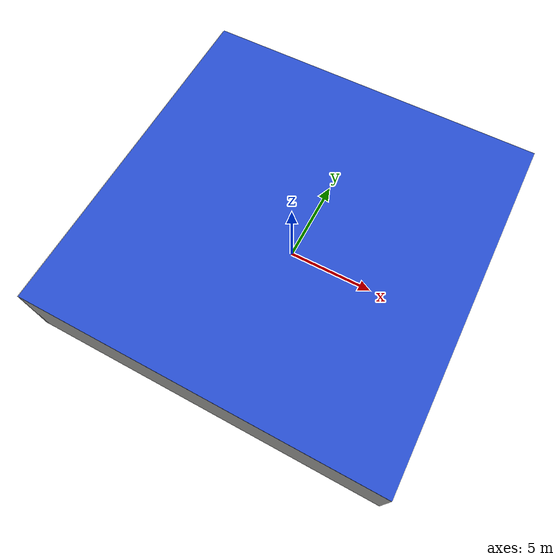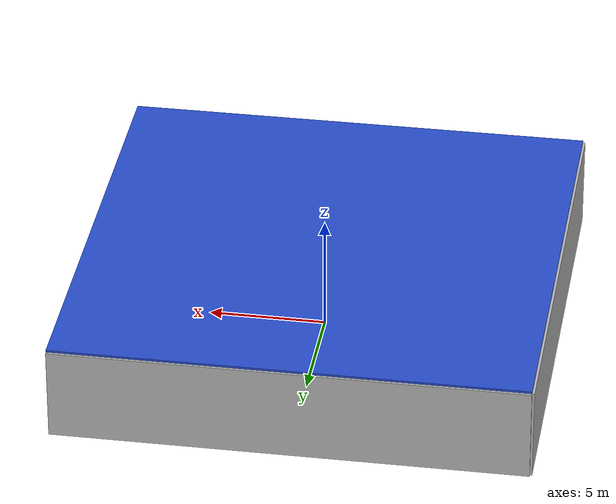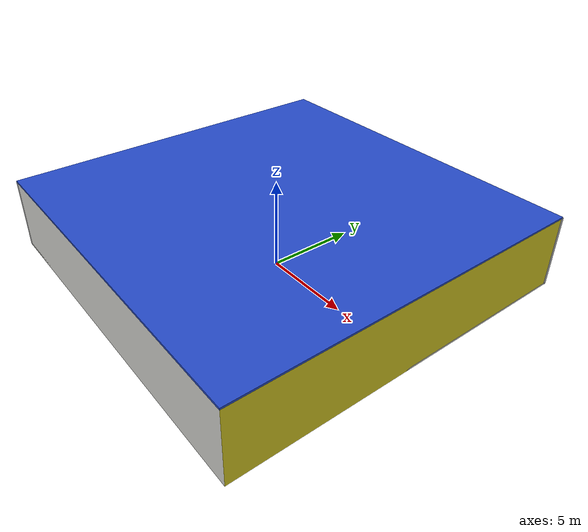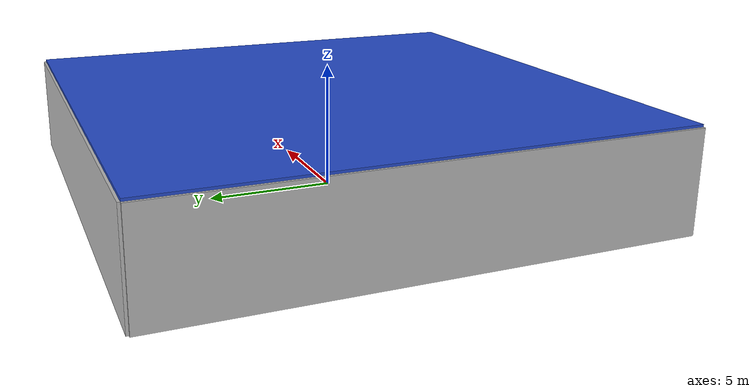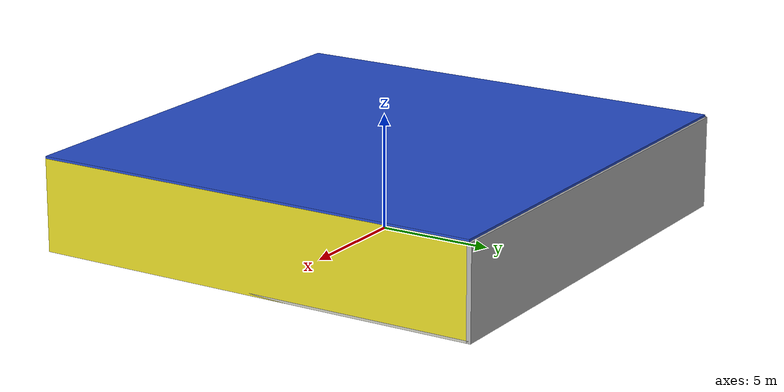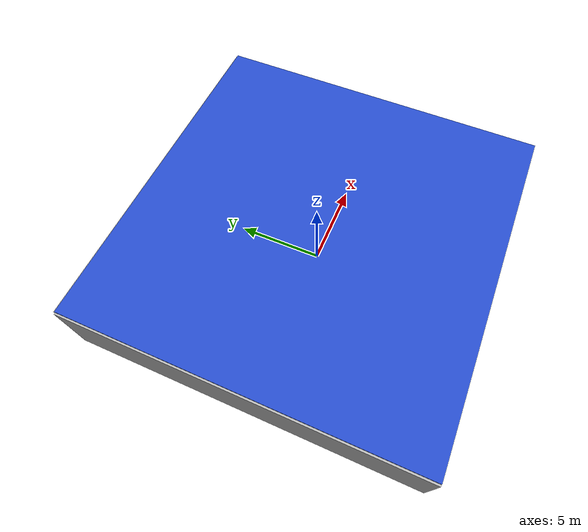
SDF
<sdf version="1.4">
 <world name="default">
  <physics type="ode">
   <max_step_size>0.001</max_step_size>
   <real_time_factor>1</real_time_factor>
   <real_time_update_rate>1000</real_time_update_rate>
   <gravity>0 0 -9.8</gravity>
  </physics>
  <scene><ambient>0.4 0.4 0.4 1</ambient><background>0.7 0.7 0.7 1</background><shadows>1</shadows></scene>
  <model name="Surrounding">
   <static>1</static>
   <link name="Ceiling">
    <collision name="Ceiling_Collision"><geometry><box><size>20 20 0.1</size></box></geometry></collision>
    <visual name="Ceiling_Visual">
     <geometry><box><size>20 20 0.1</size></box></geometry>
     <material>
      <script><uri>file://media/materials/scripts/gazebo.material</uri><name>Gazebo/BlueGlow</name></script>
     </material>
    </visual>
    <pose>0 0 4.05 0 0 0</pose>
   </link>
   <link name="Wall_South">
    <collision name="Wall_South_Collision">
     <geometry><box><size>20 0 4</size></box></geometry>
     <pose>0 0 2 0 -0 0</pose>
    </collision>
    <visual name="Wall_South_Visual">
     <pose>0 0 2 0 -0 0</pose>
     <geometry><box><size>20 0 4</size></box></geometry>
     <material>
      <script><uri>file://media/materials/scripts/gazebo.material</uri><name>Gazebo/CeilingTiled</name></script>
     </material>
    </visual>
    <velocity_decay><linear>0</linear><angular>0</angular></velocity_decay>
    <pose>0 -10 0 0 -0 0</pose>
   </link>
   <link name="Wall_East">
    <collision name="Wall_21_Collision">
     <geometry><box><size>20 0 4</size></box></geometry>
     <pose>0 0 2 0 -0 0</pose>
    </collision>
    <visual name="Wall_21_Visual">
     <pose>0 0 2 0 -0 0</pose>
     <geometry><box><size>20 0 4</size></box></geometry>
     <material>
      <script><uri>file://media/materials/scripts/gazebo.material</uri><name>Gazebo/YellowGlow</name></script>
     </material>
    </visual>
    <velocity_decay><linear>0</linear><angular>0</angular></velocity_decay>
    <pose>10 0 0 0 -0 1.5708</pose>
   </link>
   <link name="Wall_North">
    <collision name="Wall_22_Collision">
     <geometry><box><size>20 0.2 4</size></box></geometry>
     <pose>0 0 2 0 -0 0</pose>
    </collision>
    <visual name="Wall_22_Visual">
     <pose>0 0 2 0 -0 0</pose>
     <geometry><box><size>20 0.2 4</size></box></geometry>
     <material>
      <script><uri>file://media/materials/scripts/gazebo.material</uri><name>Gazebo/JointAnchor</name></script>
     </material>
    </visual>
    <velocity_decay><linear>0</linear><angular>0</angular></velocity_decay>
    <pose>0 10 0 0 -0 0</pose>
   </link>
   <link name="Wall_West">
    <collision name="Wall_23_Collision">
     <geometry><box><size>20 0.2 4</size></box></geometry>
     <pose>0 0 2 0 -0 0</pose>
    </collision>
    <visual name="Wall_23_Visual">
     <pose>0 0 2 0 -0 0</pose>
     <geometry><box><size>20 0.2 4</size></box></geometry>
     <material>
      <script><uri>file://media/materials/scripts/gazebo.material</uri><name>Gazebo/LightOff</name></script>
     </material>
    </visual>
    <velocity_decay><linear>0</linear><angular>0</angular></velocity_decay>
    <pose>-10 0 0 0 0 -1.5708</pose>
   </link>
   <link name="Ground_link">
    <collision name="collision">
     <pose>0 0 .05 0 -0 0</pose>
     <geometry><box><size>20 20 0.1</size></box></geometry>
    </collision>
    <visual name="visual">
     <pose>0 0 .05 0 -0 0</pose>
     <geometry><box><size>20 20 0.1</size></box></geometry>
     <material>
      <script><uri>file://media/materials/scripts/gazebo.material</uri><name>Gazebo/PaintedWall</name></script>
     </material>
    </visual>
   </link>
   <static>1</static>
  </model>
  <spherical_coordinates>
   <surface_model>EARTH_WGS84</surface_model>
   <latitude_deg>0</latitude_deg>
   <longitude_deg>0</longitude_deg>
   <elevation>0</elevation>
   <heading_deg>0</heading_deg>
  </spherical_coordinates>
  <light name="lightball_0" type="diffuse">
   <diffuse>0.8 0.8 0.8 1</diffuse>
   <specular>0.2 0.2 0.2 1</specular>
   <attenuation>
    <range>100</range>
    <constant>0.7</constant>
    <linear>0.01</linear>
    <quadratic>0.001</quadratic>
   </attenuation>
   <direction>-0.5 0.1 -0.9</direction>
   <pose>-7.15594586685 5.40247141053 2.02155128995 0 0 0</pose>
  </light>
  <light name="lightball_1" type="diffuse">
   <diffuse>0.8 0.8 0.8 1</diffuse>
   <specular>0.2 0.2 0.2 1</specular>
   <attenuation>
    <range>100</range>
    <constant>0.7</constant>
    <linear>0.01</linear>
    <quadratic>0.001</quadratic>
   </attenuation>
   <direction>-0.5 0.1 -0.9</direction>
   <pose>-8.53074468177 3.76611683301 1.34309307447 0 0 0</pose>
  </light>
  <light name="lightball_2" type="diffuse">
   <diffuse>0.8 0.8 0.8 1</diffuse>
   <specular>0.2 0.2 0.2 1</specular>
   <attenuation>
    <range>100</range>
    <constant>0.7</constant>
    <linear>0.01</linear>
    <quadratic>0.001</quadratic>
   </attenuation>
   <direction>-0.5 0.1 -0.9</direction>
   <pose>-6.0662179171 8.8625415382 2.15899731203 0 0 0</pose>
  </light>
  <include>
   <uri>model://construction_cone</uri>
   <pose>-4.20914552128 7.87352533076 0 0 0 2.39692313554</pose>
  </include>
  <include>
   <uri>model://textured_shapes</uri>
   <pose>-0.88759549539 -3.98083277337 0 0 0 1.98608483548</pose>
  </include>
  <include><uri>model://cabinet</uri><pose>-1.91756424933 0.700485012686 0 0 0 0.358120206335</pose></include>
  <include><uri>model://cabinet</uri><pose>4.89553152659 4.18206559726 0 0 0 0.662780155287</pose></include>
  <include>
   <uri>model://textured_shapes</uri>
   <pose>7.38095121095 -7.30265015973 0 0 0 0.330690460911</pose>
  </include>
  <include>
   <uri>model://robocup_3Dsim_goal</uri>
   <pose>6.83192825038 1.83624450206 0 0 0 1.42063019698</pose>
  </include>
 </world>
</sdf>

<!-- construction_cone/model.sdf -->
<sdf version="1.5">
  <model name="Construction Cone">
    <link name="link">
      <collision name="collision">
        <geometry>
          <mesh>
            <scale>10 10 10</scale>
            <uri>file://isr-testbed/construction_cone/meshes/construction_cone.dae</uri>
          </mesh>
        </geometry>
      </collision>
      <visual name="visual">
        <geometry>
          <mesh>
            <scale>10 10 10</scale>
            <uri>file://isr-testbed/construction_cone/meshes/construction_cone.dae</uri>
          </mesh>
        </geometry>
      </visual>
    </link>
  </model>
</sdf>

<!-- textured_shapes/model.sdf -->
<sdf version="1.6">
  <model name="textured_shapes">
    <pose>0 0 0.5 0 0 0</pose>
    <link name="box">
      <pose>0 -1.5 0 0 0 0</pose>
      <collision name="collision">
        <geometry>
          <box>
            <size>1 1 1</size>
          </box>
        </geometry>
      </collision>
      <visual name="visual">
        <geometry>
          <box>
            <size>1 1 1</size>
          </box>
        </geometry>
        <material>
          <script>
            <uri>model://../model_source/models/textured_shapes/materials/scripts</uri>
            <uri>model://../model_source/models/textured_shapes/materials/textures</uri>
            <name>TexturedShape/Squares</name>
          </script>
        </material>
      </visual>
    </link>
    <link name="sphere">
      <collision name="collision">
        <geometry>
          <sphere>
            <radius>0.5</radius>
          </sphere>
        </geometry>
      </collision>
      <visual name="visual">
        <geometry>
          <sphere>
            <radius>0.5</radius>
          </sphere>
        </geometry>
        <material>
          <script>
            <uri>model://../model_source/models/textured_shapes/materials/scripts</uri>
            <uri>model://../model_source/models/textured_shapes/materials/textures</uri>
            <name>TexturedShape/Squares</name>
          </script>
        </material>
      </visual>
    </link>
    <link name="cylinder">
      <pose>0 1.5 0 0 0 0</pose>
      <collision name="collision">
        <geometry>
          <cylinder>
            <radius>0.5</radius>
            <length>1</length>
          </cylinder>
        </geometry>
      </collision>
      <visual name="visual">
        <geometry>
          <cylinder>
            <radius>0.5</radius>
            <length>1</length>
          </cylinder>
        </geometry>
        <material>
          <script>
            <uri>model://../model_source/models/textured_shapes/materials/scripts</uri>
            <uri>model://../model_source/models/textured_shapes/materials/textures</uri>
            <name>TexturedShape/Squares</name>
          </script>
        </material>
      </visual>
    </link>
  </model>
</sdf>

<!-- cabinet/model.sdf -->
<sdf version="1.5">
  <model name="cabinet">
    <static>true</static>
    <link name="cabinet_bottom_plate">
      <inertial>
        <pose>0 0 -1 0 0 0</pose>
        <inertia>
          <ixx>2.050000</ixx>
          <ixy>0</ixy>
          <ixz>0</ixz>
          <iyy>2.050000</iyy>
          <iyz>0</iyz>
          <izz>2.050000</izz>
        </inertia>
        <mass>25.000000</mass>
      </inertial>
      <collision name="cabinet_bottom_plate_geom">
        <pose>0 0 0.010000 0 0 0</pose>
        <geometry>
          <box>
            <size>0.450000 0.450000 0.020000</size>
          </box>
        </geometry>
      </collision>
      <visual name="cabinet_bottom_plate_geom_visual">
        <pose>0 0 0.010000 0 0 0</pose>
        <geometry>
          <box>
            <size>0.450000 0.450000 0.020000</size>
          </box>
        </geometry>
        <material>
          <script>
            <uri>model://media/materials/scripts/gazebo.material</uri>
            <name>Gazebo/Wood</name>
          </script>
        </material>
      </visual>
      <collision name="cabinet_bottom_plate_geom_cabinet_back_plate">
        <pose>0.235000 0 0.510000 0 0 0</pose>
        <geometry>
          <box>
            <size>0.020000 0.450000 1.020000</size>
          </box>
        </geometry>
      </collision>
      <visual name="cabinet_bottom_plate_geom_cabinet_back_plate_visual">
        <pose>0.235000 0 0.510000 0 0 0</pose>
        <geometry>
          <box>
            <size>0.020000 0.450000 1.020000</size>
          </box>
        </geometry>
        <material>
          <script>
            <uri>model://media/materials/scripts/gazebo.material</uri>
            <name>Gazebo/Wood</name>
          </script>
        </material>
      </visual>
      <collision name="cabinet_bottom_plate_geom_cabinet_left_plate">
        <pose>0 0.235000 0.510000 0 0 0</pose>
        <geometry>
          <box>
            <size>0.450000 0.020000 1.020000</size>
          </box>
        </geometry>
      </collision>
      <visual name="cabinet_bottom_plate_geom_cabinet_left_plate_visual">
        <pose>0 0.235000 0.510000 0 0 0</pose>
        <geometry>
          <box>
            <size>0.450000 0.020000 1.020000</size>
          </box>
        </geometry>
        <material>
          <script>
            <uri>model://media/materials/scripts/gazebo.material</uri>
            <name>Gazebo/Wood</name>
          </script>
        </material>
      </visual>
      <collision name="cabinet_bottom_plate_geom_cabinet_middle_plate">
        <pose>0 0 0.510000 0 0 0</pose>
        <geometry>
          <box>
            <size>0.450000 0.450000 0.020000</size>
          </box>
        </geometry>
      </collision>
      <visual name="cabinet_bottom_plate_geom_cabinet_middle_plate_visual">
        <pose>0 0 0.510000 0 0 0</pose>
        <geometry>
          <box>
            <size>0.450000 0.450000 0.020000</size>
          </box>
        </geometry>
        <material>
          <script>
            <uri>model://media/materials/scripts/gazebo.material</uri>
            <name>Gazebo/Wood</name>
          </script>
        </material>
      </visual>
      <collision name="cabinet_bottom_plate_geom_cabinet_right_plate">
        <pose>0 -0.235000 0.510000 0 0 0</pose>
        <geometry>
          <box>
            <size>0.450000 0.020000 1.020000</size>
          </box>
        </geometry>
      </collision>
      <visual name="cabinet_bottom_plate_geom_cabinet_right_plate_visual">
        <pose>0 -0.235000 0.510000 0 0 0</pose>
        <geometry>
          <box>
            <size>0.450000 0.020000 1.020000</size>
          </box>
        </geometry>
        <material>
          <script>
            <uri>model://media/materials/scripts/gazebo.material</uri>
            <name>Gazebo/Wood</name>
          </script>
        </material>
      </visual>
      <collision name="cabinet_bottom_plate_geom_cabinet_top_plate">
        <pose>0 0 1.010000 0 0 0</pose>
        <geometry>
          <box>
            <size>0.450000 0.450000 0.020000</size>
          </box>
        </geometry>
      </collision>
      <visual name="cabinet_bottom_plate_geom_cabinet_top_plate_visual">
        <pose>0 0 1.010000 0 0 0</pose>
        <geometry>
          <box>
            <size>0.450000 0.450000 0.020000</size>
          </box>
        </geometry>
        <material>
          <script>
            <uri>model://media/materials/scripts/gazebo.material</uri>
            <name>Gazebo/Wood</name>
          </script>
        </material>
      </visual>
    </link>
  </model>
</sdf>

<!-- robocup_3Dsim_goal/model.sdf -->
<sdf version="1.5">
  <model name="robocup_3d_goal">
    <static>true</static>
    <link name="left_post">
      <pose>0 1.05 0.45 0 0 0</pose>
      <collision name="collision">
        <geometry>
          <cylinder>
            <radius>0.05</radius>
            <length>0.9</length>
          </cylinder>
        </geometry>
      </collision>
      <visual name="visual">
        <geometry>
          <cylinder>
            <radius>0.05</radius>
            <length>0.9</length>
          </cylinder>
        </geometry>
        <material>
          <script>
            <uri>file://media/materials/scripts/gazebo.material</uri>
            <name>Gazebo/ZincYellow</name>
          </script>
        </material>
      </visual>
    </link>
    <link name="left_support_horiz_lower">
      <pose>0.30 1.05 0.01 0 0 0</pose>
      <collision name="collision">
        <geometry>
          <box>
            <size>0.50 0.02 0.02</size>
          </box>
        </geometry>
      </collision>
      <visual name="visual">
        <geometry>
          <box>
            <size>0.50 0.02 0.02</size>
          </box>
        </geometry>
        <material>
          <script>
            <uri>file://media/materials/scripts/gazebo.material</uri>
            <name>Gazebo/White</name>
          </script>
        </material>
      </visual>
    </link>
    <link name="left_support_horiz_upper">
      <pose>0.30 1.05 0.79 0 0 0</pose>
      <collision name="collision">
        <geometry>
          <box>
            <size>0.50 0.02 0.02</size>
          </box>
        </geometry>
      </collision>
      <visual name="visual">
        <geometry>
          <box>
            <size>0.50 0.02 0.02</size>
          </box>
        </geometry>
        <material>
          <script>
            <uri>file://media/materials/scripts/gazebo.material</uri>
            <name>Gazebo/White</name>
          </script>
        </material>
      </visual>
    </link>
    <link name="left_support_vertical">
      <pose>0.56 1.05 0.4 0 1.5708 0</pose>
      <collision name="collision">
        <geometry>
          <box>
            <size>0.80 0.02 0.02</size>
          </box>
        </geometry>
      </collision>
      <visual name="visual">
        <geometry>
          <box>
            <size>0.80 0.02 0.02</size>
          </box>
        </geometry>
        <material>
          <script>
            <uri>file://media/materials/scripts/gazebo.material</uri>
            <name>Gazebo/White</name>
          </script>
        </material>
      </visual>
    </link>
    <link name="right_support_horiz_lower">
      <pose>0.30 -1.05 0.01 0 0 0</pose>
      <collision name="collision">
        <geometry>
          <box>
            <size>0.50 0.02 0.02</size>
          </box>
        </geometry>
      </collision>
      <visual name="visual">
        <geometry>
          <box>
            <size>0.50 0.02 0.02</size>
          </box>
        </geometry>
        <material>
          <script>
            <uri>file://media/materials/scripts/gazebo.material</uri>
            <name>Gazebo/White</name>
          </script>
        </material>
      </visual>
    </link>
    <link name="right_support_horiz_upper">
      <pose>0.30 -1.05 0.79 0 0 0</pose>
      <collision name="collision">
        <geometry>
          <box>
            <size>0.50 0.02 0.02</size>
          </box>
        </geometry>
      </collision>
      <visual name="visual">
        <geometry>
          <box>
            <size>0.50 0.02 0.02</size>
          </box>
        </geometry>
        <material>
          <script>
            <uri>file://media/materials/scripts/gazebo.material</uri>
            <name>Gazebo/White</name>
          </script>
        </material>
      </visual>
    </link>
    <link name="right_support_vertical">
      <pose>0.56 -1.05 0.4 0 1.5708 0</pose>
      <collision name="collision">
        <geometry>
          <box>
            <size>0.80 0.02 0.02</size>
          </box>
        </geometry>
      </collision>
      <visual name="visual">
        <geometry>
          <box>
            <size>0.80 0.02 0.02</size>
          </box>
        </geometry>
        <material>
          <script>
            <uri>file://media/materials/scripts/gazebo.material</uri>
            <name>Gazebo/White</name>
          </script>
        </material>
      </visual>
    </link>
    <link name="center_support_horiz_lower">
      <pose>0.56 0 0.01 0 1.5708 0</pose>
      <collision name="collision">
        <geometry>
          <box>
            <size>0.02 2.08 0.02</size>
          </box>
        </geometry>
      </collision>
      <visual name="visual">
        <geometry>
          <box>
            <size>0.02 2.08 0.02</size>
          </box>
        </geometry>
        <material>
          <script>
            <uri>file://media/materials/scripts/gazebo.material</uri>
            <name>Gazebo/White</name>
          </script>
        </material>
      </visual>
    </link>
    <link name="center_support_horiz_upper">
      <pose>0.56 0 0.79 0 1.5708 0</pose>
      <collision name="collision">
        <geometry>
          <box>
            <size>0.02 2.08 0.02</size>
          </box>
        </geometry>
      </collision>
      <visual name="visual">
        <geometry>
          <box>
            <size>0.02 2.08 0.02</size>
          </box>
        </geometry>
        <material>
          <script>
            <uri>file://media/materials/scripts/gazebo.material</uri>
            <name>Gazebo/White</name>
          </script>
        </material>
      </visual>
    </link>
    <link name="right_post">
      <pose>0 -1.05 0.45 0 0 0</pose>
      <collision name="collision">
        <geometry>
          <cylinder>
            <radius>0.05</radius>
            <length>0.9</length>
          </cylinder>
        </geometry>
      </collision>
      <visual name="visual">
        <geometry>
          <cylinder>
            <radius>0.05</radius>
            <length>0.9</length>
          </cylinder>
        </geometry>
        <material>
          <script>
            <uri>file://media/materials/scripts/gazebo.material</uri>
            <name>Gazebo/ZincYellow</name>
          </script>
        </material>
      </visual>
    </link>
    <link name="crossbar">
      <pose>0 0 0.85 1.57 1.57 0</pose>
      <collision name="collision">
        <geometry>
          <cylinder>
            <radius>0.05</radius>
            <length>2.0</length>
          </cylinder>
        </geometry>
      </collision>
      <visual name="visual">
        <geometry>
          <cylinder>
            <radius>0.05</radius>
            <length>2.0</length>
          </cylinder>
        </geometry>
        <material>
          <script>
            <uri>file://media/materials/scripts/gazebo.material</uri>
            <name>Gazebo/ZincYellow</name>
          </script>
        </material>
      </visual>
    </link>
    <link name="center_net">
      <pose>0.56 0 0.40 0 0 0</pose>
      <collision name="collision">
        <geometry>
          <box>
            <size>0.01 2.1 0.80</size>
          </box>
        </geometry>
      </collision>
      <visual name="visual">
        <geometry>
          <box>
            <size>0.01 2.1 0.80</size>
          </box>
        </geometry>
        <material>
          <script>
            <uri>model://../model_source/models/robocup09_spl_field/materials/scripts/</uri>
            <uri>model://../model_source/models/robocup09_spl_field/materials/textures/</uri>
            <name>RoboCup/Net</name>
          </script>
        </material>
      </visual>
    </link>
    <link name="left_net">
      <pose>0.30 1.05 0.40 0 0 0</pose>
      <collision name="collision">
        <geometry>
          <box>
            <size>0.50 0.01 0.76</size>
          </box>
        </geometry>
      </collision>
      <visual name="visual">
        <geometry>
          <box>
            <size>0.50 0.01 0.76</size>
          </box>
        </geometry>
        <material>
          <script>
            <uri>model://../model_source/models/robocup09_spl_field/materials/scripts/</uri>
            <uri>model://../model_source/models/robocup09_spl_field/materials/textures/</uri>
            <name>RoboCup/Net</name>
          </script>
        </material>
      </visual>
    </link>
    <link name="right_net">
      <pose>0.30 -1.05 0.40 0 0 0</pose>
      <collision name="collision">
        <geometry>
          <box>
            <size>0.50 0.01 0.76</size>
          </box>
        </geometry>
      </collision>
      <visual name="visual">
        <geometry>
          <box>
            <size>0.50 0.01 0.76</size>
          </box>
        </geometry>
        <material>
          <script>
            <uri>model://../model_source/models/robocup09_spl_field/materials/scripts/</uri>
            <uri>model://../model_source/models/robocup09_spl_field/materials/textures/</uri>
            <name>RoboCup/Net</name>
          </script>
        </material>
      </visual>
    </link>
  </model>
</sdf>
